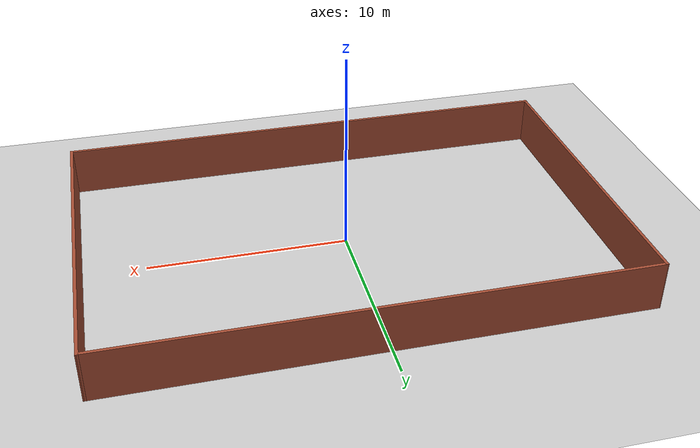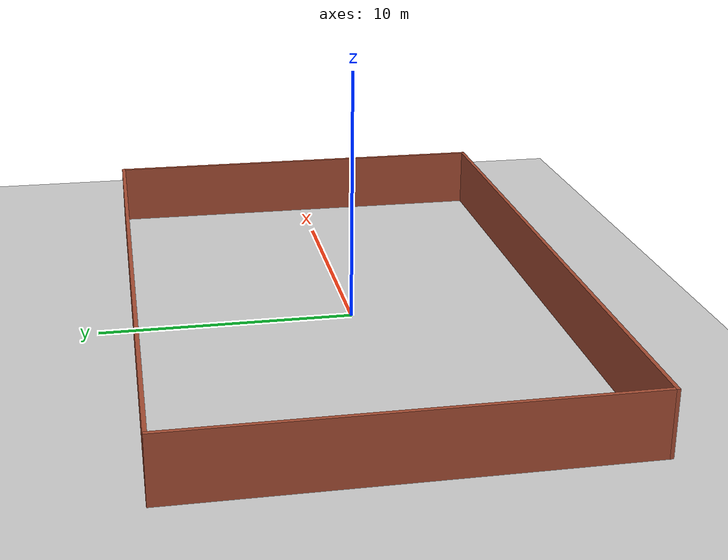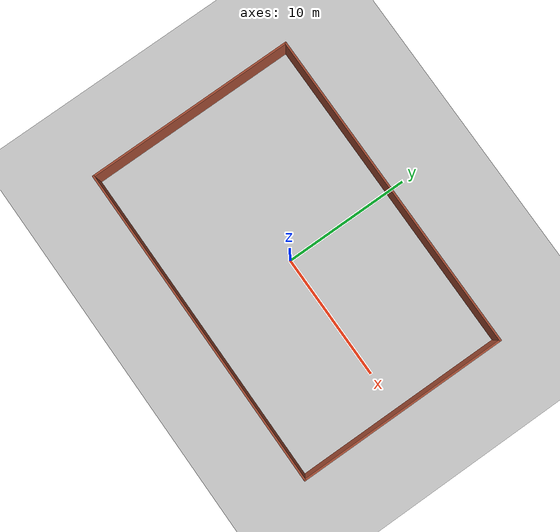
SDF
<sdf version="1.7">
 <world name="default">
  <light name="sun" type="directional">
   <pose>0 0 10 0 -0 0</pose>
   <diffuse>0.8 0.8 0.8 1</diffuse>
   <specular>0.2 0.2 0.2 1</specular>
   <attenuation>
    <range>1000</range>
    <constant>0.9</constant>
    <linear>0.01</linear>
    <quadratic>0.001</quadratic>
   </attenuation>
   <direction>-0.5 0.1 -0.9</direction>
   <spot><inner_angle>0</inner_angle><outer_angle>0</outer_angle><falloff>0</falloff></spot>
  </light>
  <model name="ground_plane">
   <static>1</static>
   <link name="link">
    <collision name="collision">
     <geometry><plane><normal>0 0 1</normal><size>100 100</size></plane></geometry>
     <surface>
      <contact><collide_bitmask>65535</collide_bitmask></contact>
      <friction><ode><mu>100</mu><mu2>50</mu2></ode></friction>
     </surface>
    </collision>
    <visual name="visual">
     <cast_shadows>0</cast_shadows>
     <geometry><plane><normal>0 0 1</normal><size>100 100</size></plane></geometry>
     <material>
      <script><uri>file://media/materials/scripts/gazebo.material</uri><name>Gazebo/Grey</name></script>
     </material>
    </visual>
   </link>
  </model>
  <gravity>0 0 -9.8</gravity>
  <magnetic_field>6e-06 2.3e-05 -4.2e-05</magnetic_field>
  <atmosphere type="adiabatic"/>
  <physics type="ode">
   <max_step_size>0.001</max_step_size>
   <real_time_factor>1</real_time_factor>
   <real_time_update_rate>1000</real_time_update_rate>
  </physics>
  <scene><ambient>0.4 0.4 0.4 1</ambient><background>0.7 0.7 0.7 1</background><shadows>1</shadows></scene>
  <spherical_coordinates>
   <surface_model>EARTH_WGS84</surface_model>
   <latitude_deg>0</latitude_deg>
   <longitude_deg>0</longitude_deg>
   <elevation>0</elevation>
   <heading_deg>0</heading_deg>
  </spherical_coordinates>
  <model name="brick_room">
   <pose>0.200739 0.270432 0 0 -0 0</pose>
   <link name="Wall_2">
    <collision name="Wall_2_Collision">
     <geometry><box><size>16.75 0.15 2.5</size></box></geometry>
     <pose>0 0 1.25 0 -0 0</pose>
    </collision>
    <visual name="Wall_2_Visual">
     <pose>0 0 1.25 0 -0 0</pose>
     <geometry><box><size>16.75 0.15 2.5</size></box></geometry>
     <material>
      <script><uri>file://media/materials/scripts/gazebo.material</uri><name>Gazebo/Bricks</name></script>
      <ambient>1 1 1 1</ambient>
     </material>
     <meta><layer>0</layer></meta>
    </visual>
    <pose>-12.9484 0.025982 0 0 -0 -1.5708</pose>
   </link>
   <link name="Wall_3">
    <collision name="Wall_3_Collision">
     <geometry><box><size>26.0097 0.15 2.5</size></box></geometry>
     <pose>0 0 1.25 0 -0 0</pose>
    </collision>
    <visual name="Wall_3_Visual">
     <pose>0 0 1.25 0 -0 0</pose>
     <geometry><box><size>26.0097 0.15 2.5</size></box></geometry>
     <material>
      <script><uri>file://media/materials/scripts/gazebo.material</uri><name>Gazebo/Bricks</name></script>
      <ambient>1 1 1 1</ambient>
     </material>
     <meta><layer>0</layer></meta>
    </visual>
    <pose>-0.018768 -8.3047 0 0 -0 -0.002373</pose>
   </link>
   <link name="Wall_4">
    <collision name="Wall_4_Collision">
     <geometry><box><size>16.8208 0.15 2.5</size></box></geometry>
     <pose>0 0 1.25 0 -0 0</pose>
    </collision>
    <visual name="Wall_4_Visual">
     <pose>0 0 1.25 0 -0 0</pose>
     <geometry><box><size>16.8208 0.15 2.5</size></box></geometry>
     <material>
      <script><uri>file://media/materials/scripts/gazebo.material</uri><name>Gazebo/Bricks</name></script>
      <ambient>1 1 1 1</ambient>
     </material>
     <meta><layer>0</layer></meta>
    </visual>
    <pose>12.9297 5e-06 0 0 -0 1.56853</pose>
   </link>
   <link name="Wall_5">
    <collision name="Wall_5_Collision">
     <geometry><box><size>26 0.15 2.5</size></box></geometry>
     <pose>0 0 1.25 0 -0 0</pose>
    </collision>
    <visual name="Wall_5_Visual">
     <pose>0 0 1.25 0 -0 0</pose>
     <geometry><box><size>26 0.15 2.5</size></box></geometry>
     <material>
      <script><uri>file://media/materials/scripts/gazebo.material</uri><name>Gazebo/Bricks</name></script>
      <ambient>1 1 1 1</ambient>
     </material>
     <meta><layer>0</layer></meta>
    </visual>
    <pose>0.023599 8.33538 0 0 -0 3.14159</pose>
   </link>
   <static>1</static>
  </model>
 </world>
</sdf>
